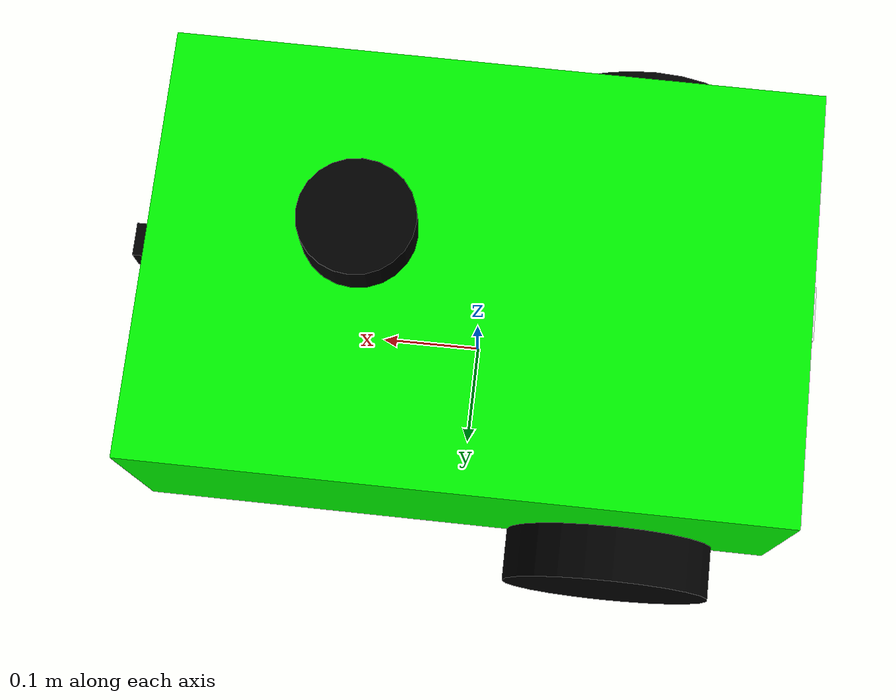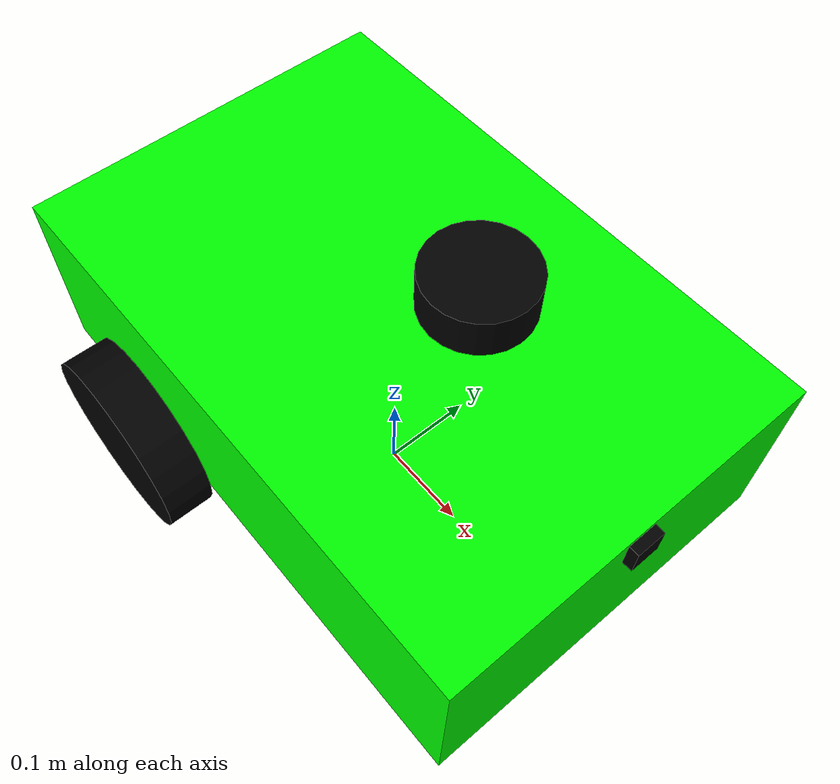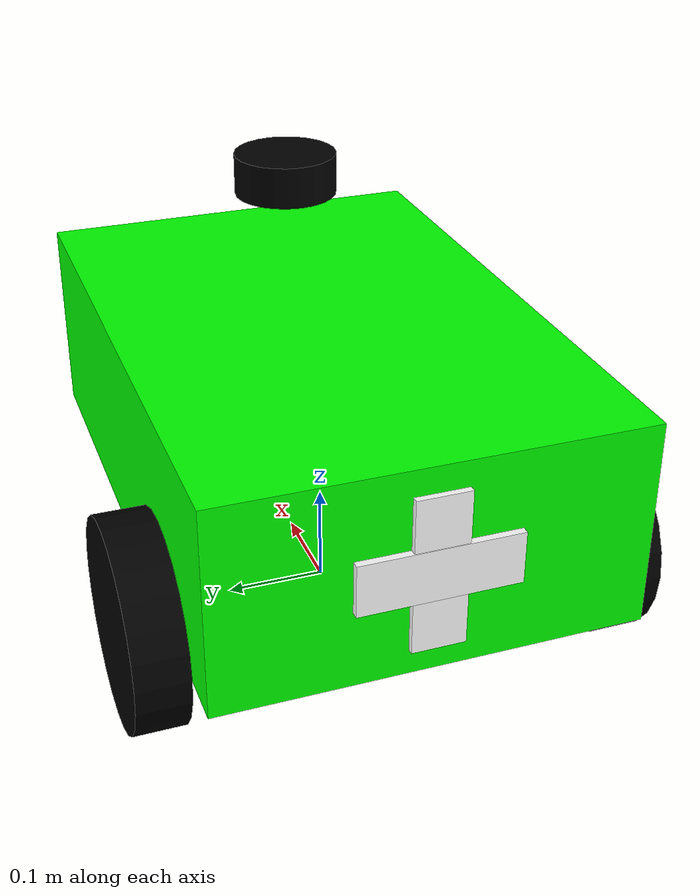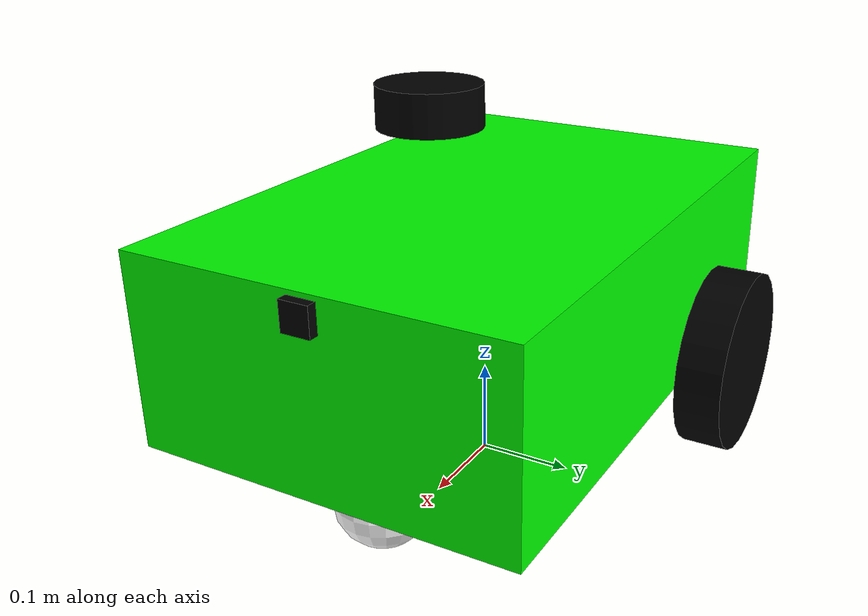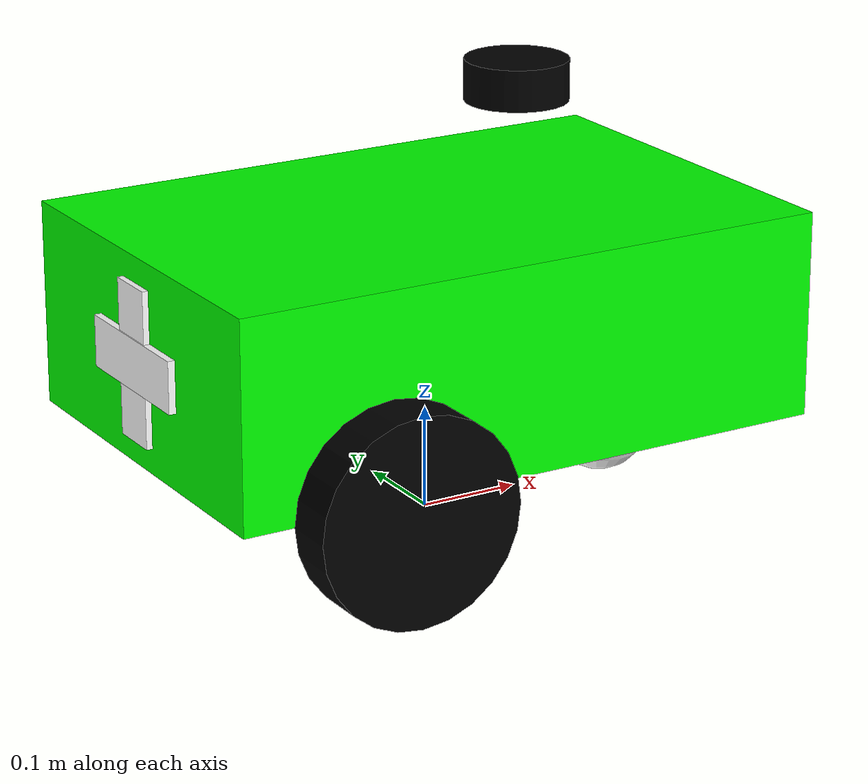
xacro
<?xml version="1.0"?>
<robot name="my_robot" xmlns:xacro="http://www.ros.org/wiki/xacro">

    <xacro:arg name="prefix" default="" />
    <xacro:arg name="color" default="Green" />

    <xacro:include filename="camera.xacro" />
    <xacro:include filename="lidar.xacro" />
    <xacro:include filename="common_properties.xacro" />
    <xacro:include filename="gazebo_plugins.xacro" />

    <xacro:property name="base_length" value="0.6" />
    <xacro:property name="base_width" value="0.4" />
    <xacro:property name="base_height" value="0.2" />
    <xacro:property name="wheel_radius" value="0.1" />
    <xacro:property name="wheel_length" value="0.05" />
    <xacro:property name="robot_color" value="$(arg color)" />

    <link name="$(arg prefix)base_footprint" />

    <joint name="$(arg prefix)base_joint" type="fixed">
        <parent link="$(arg prefix)base_footprint"/>
        <child link="$(arg prefix)base_link"/>
        <origin xyz="0 0 0.2" rpy="0 0 0"/>
    </joint>

    <link name="$(arg prefix)base_link">
        <visual>
            <geometry>
                <box size="${base_length} ${base_width} ${base_height}"/>
            </geometry>
            <material name="green"/>
        </visual>
        <collision>
            <geometry>
                <box size="${base_length} ${base_width} ${base_height}"/>
            </geometry>
        </collision>
        <xacro:box_inertia m="5.0" x="${base_length}" y="${base_width}" z="${base_height}"
                           o_xyz="0 0 0" o_rpy="0 0 0" />
    </link>

    <!-- Color del cuerpo en Gazebo (controlado por el argumento color) -->
    <gazebo reference="$(arg prefix)base_link">
        <material>Gazebo/${robot_color}</material>
    </gazebo>

    <xacro:macro name="wheel_link" params="side y_offset">
        <link name="$(arg prefix)${side}_wheel">
            <visual>
                <geometry>
                    <cylinder radius="${wheel_radius}" length="${wheel_length}"/>
                </geometry>
                <material name="black"/>
            </visual>
            <collision>
                <geometry>
                    <cylinder radius="${wheel_radius}" length="${wheel_length}"/>
                </geometry>
            </collision>
            <xacro:cylinder_inertia m="1.0" r="${wheel_radius}" h="${wheel_length}"
                                    o_xyz="0 0 0" o_rpy="0 0 0" />
        </link>

        <joint name="$(arg prefix)${side}_wheel_joint" type="continuous">
            <parent link="$(arg prefix)base_link"/>
            <child link="$(arg prefix)${side}_wheel"/>
            <origin xyz="-0.15 ${y_offset} -0.1" rpy="${pi/2} 0 0"/>
            <axis xyz="0 0 -1"/>
        </joint>
    </xacro:macro>

    <xacro:wheel_link side="left" y_offset="0.225" />
    <xacro:wheel_link side="right" y_offset="-0.225" />

    <link name="$(arg prefix)caster_wheel">
        <visual>
            <geometry> <sphere radius="${wheel_radius / 2.0}"/> </geometry>
            <material name="white"/>
        </visual>
        <collision>
            <geometry> <sphere radius="${wheel_radius / 2.0}"/> </geometry>
        </collision>
        <xacro:sphere_inertia m="0.5" r="${wheel_radius / 2.0}" o_xyz="0 0 0" o_rpy="0 0 0" />
    </link>

    <joint name="$(arg prefix)caster_joint" type="fixed">
        <parent link="$(arg prefix)base_link"/>
        <child link="$(arg prefix)caster_wheel"/>
        <origin xyz="0.2 0 -0.15" rpy="0 0 0"/>
    </joint>

    <gazebo reference="$(arg prefix)caster_wheel">
        <mu1>0.0</mu1>
        <mu2>0.0</mu2>
        <kp>1000000.0</kp>
        <kd>100.0</kd>
        <material>Gazebo/White</material>
    </gazebo>

    <link name="$(arg prefix)cruz_vertical">
        <visual>
            <geometry> <box size="0.01 0.05 0.15"/> </geometry>
            <material name="white"/>
        </visual>
    </link>

    <joint name="$(arg prefix)joint_cruz_vertical" type="fixed">
        <parent link="$(arg prefix)base_link"/>
        <child link="$(arg prefix)cruz_vertical"/>
        <origin xyz="-0.301 0 0" rpy="0 0 0"/>
    </joint>

    <gazebo reference="$(arg prefix)cruz_vertical">
        <material>Gazebo/White</material>
    </gazebo>

    <link name="$(arg prefix)cruz_horizontal">
        <visual>
            <geometry> <box size="0.01 0.15 0.05"/> </geometry>
            <material name="white"/>
        </visual>
    </link>

    <joint name="$(arg prefix)joint_cruz_horizontal" type="fixed">
        <parent link="$(arg prefix)base_link"/>
        <child link="$(arg prefix)cruz_horizontal"/>
        <origin xyz="-0.302 0 0" rpy="0 0 0"/>
    </joint>

    <gazebo reference="$(arg prefix)cruz_horizontal">
        <material>Gazebo/White</material>
    </gazebo>

</robot>

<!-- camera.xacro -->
<robot xmlns:xacro="http://www.ros.org/wiki/xacro">

    <xacro:arg name="prefix" default="" />

    <joint name="$(arg prefix)camera_joint" type="fixed">
        <parent link="$(arg prefix)base_link"/>
        <child link="$(arg prefix)camera_link"/>
        <origin xyz="0.305 0 0.08" rpy="0 0 0"/>
    </joint>

    <link name="$(arg prefix)camera_link">
        <visual>
            <geometry> <box size="0.010 0.03 0.03"/> </geometry>
            <material name="black"/>
        </visual>
    </link>

    <gazebo reference="$(arg prefix)camera_link">
        <sensor type="camera" name="$(arg prefix)camera">
            <update_rate>30</update_rate>
            <visualize>true</visualize>

            <topic>$(arg prefix)camera/image_raw</topic>

            <gz_frame_id>$(arg prefix)camera_link</gz_frame_id>

            <camera>
                <horizontal_fov>1.089</horizontal_fov>
                <image>
                    <width>640</width>
                    <height>480</height>
                    <format>R8G8B8</format>
                </image>
                <clip>
                    <near>0.05</near>
                    <far>8.0</far>
                </clip>
            </camera>
        </sensor>
    </gazebo>
</robot>

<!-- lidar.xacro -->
<robot xmlns:xacro="http://www.ros.org/wiki/xacro">

    <xacro:arg name="prefix" default="" />

    <joint name="$(arg prefix)laser_joint" type="fixed">
        <parent link="$(arg prefix)base_link"/>
        <child link="$(arg prefix)laser_frame"/>
        <origin xyz="0.1 0 0.21" rpy="0 0 0"/>
    </joint>

    <link name="$(arg prefix)laser_frame">
        <visual>
            <geometry> <cylinder radius="0.05" length="0.04"/> </geometry>
            <material name="black"/>
        </visual>
    </link>

    <gazebo reference="$(arg prefix)laser_frame">
        <sensor type="gpu_lidar" name="$(arg prefix)lidar">
            <update_rate>10</update_rate>
            <visualize>true</visualize>

            <topic>$(arg prefix)scan</topic>

            <gz_frame_id>$(arg prefix)laser_frame</gz_frame_id>

            <lidar>
                <scan>
                    <horizontal>
                        <samples>640</samples>
                        <resolution>1</resolution>
                        <min_angle>-3.14</min_angle>
                        <max_angle>3.14</max_angle>
                    </horizontal>
                </scan>
                <range>
                    <min>0.1</min>
                    <max>10.0</max>
                </range>
            </lidar>
        </sensor>
    </gazebo>
</robot>

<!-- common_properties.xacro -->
<robot xmlns:xacro="http://www.ros.org/wiki/xacro">

    <material name="green"> <color rgba="0 1 0 1"/> </material>
    <material name="black"> <color rgba="0 0 0 1"/> </material>
    <material name="white"> <color rgba="1 1 1 1"/> </material>

    <xacro:macro name="box_inertia" params="m x y z o_xyz o_rpy">
        <inertial>
            <origin xyz="${o_xyz}" rpy="${o_rpy}" />
            <mass value="${m}" />
            <inertia ixx="${(m/12) * (y*y + z*z)}" ixy="0" ixz="0"
                     iyy="${(m/12) * (x*x + z*z)}" iyz="0"
                     izz="${(m/12) * (x*x + y*y)}" />
        </inertial>
    </xacro:macro>

    <xacro:macro name="cylinder_inertia" params="m r h o_xyz o_rpy">
        <inertial>
            <origin xyz="${o_xyz}" rpy="${o_rpy}" />
            <mass value="${m}" />
            <inertia ixx="${(m/12) * (3*r*r + h*h)}" ixy="0" ixz="0"
                     iyy="${(m/12) * (3*r*r + h*h)}" iyz="0"
                     izz="${(m/2) * (r*r)}" />
        </inertial>
    </xacro:macro>

    <xacro:macro name="sphere_inertia" params="m r o_xyz o_rpy">
        <inertial>
            <origin xyz="${o_xyz}" rpy="${o_rpy}" />
            <mass value="${m}" />
            <inertia ixx="${(2/5) * m * r * r}" ixy="0" ixz="0"
                     iyy="${(2/5) * m * r * r}" iyz="0"
                     izz="${(2/5) * m * r * r}" />
        </inertial>
    </xacro:macro>

</robot>
